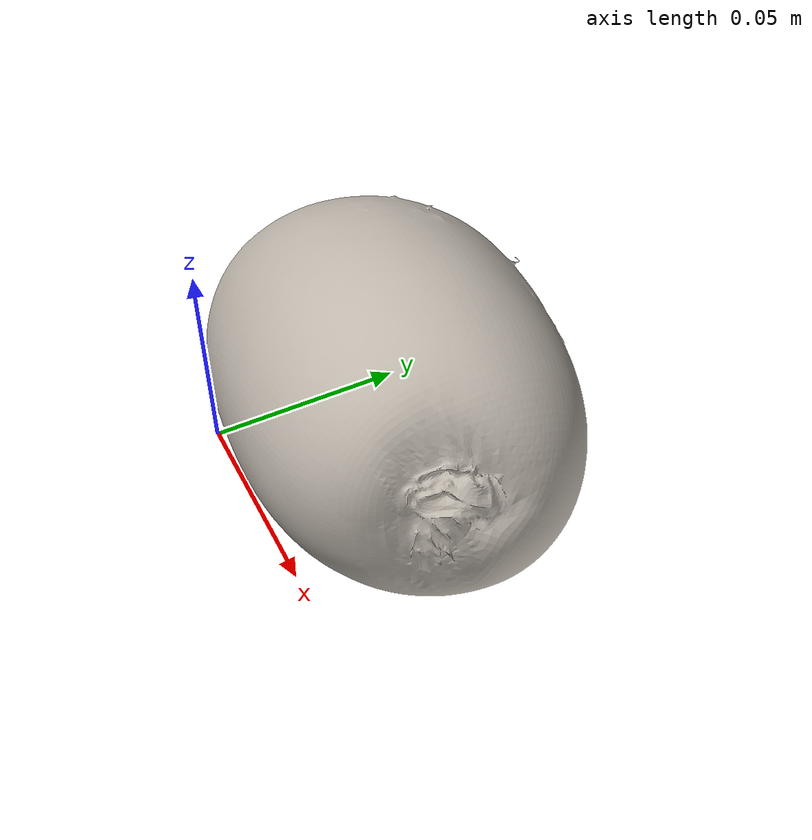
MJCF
<mujoco model="069_vagetable">
  <asset>
    <mesh name="069_vagetable_visual" file="069_vagetable_visual.obj"/>
    <mesh name="069_vagetable_collision" file="069_vagetable_collision.stl"/>
    <texture name="069_vagetable_tex" type="2d" file="069_vagetable.png"/>
    <material name="069_vagetable_mat" texture="069_vagetable_tex"/>
  </asset>
  <worldbody>
    <body name="069_vagetable" pos="0 0 0">
      <freejoint/>
      <geom type="mesh" mesh="069_vagetable_visual" material="069_vagetable_mat"
            mass="0.3619" contype="0" conaffinity="0"/>
      <geom type="mesh" mesh="069_vagetable_collision" mass="0"
            contype="1" conaffinity="1"
            friction="0.5 .005 0.01"
            rgba="0 0 0 0"/>
    </body>
  </worldbody>
</mujoco>
